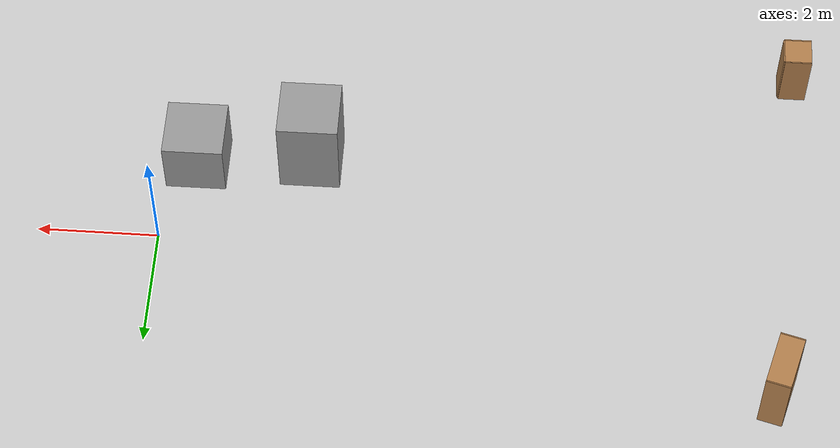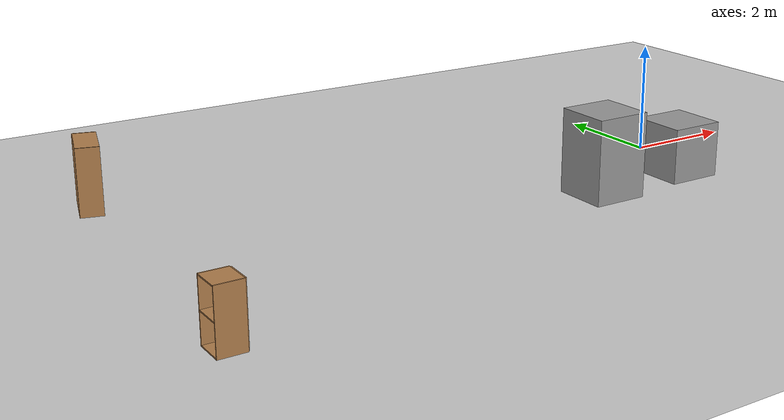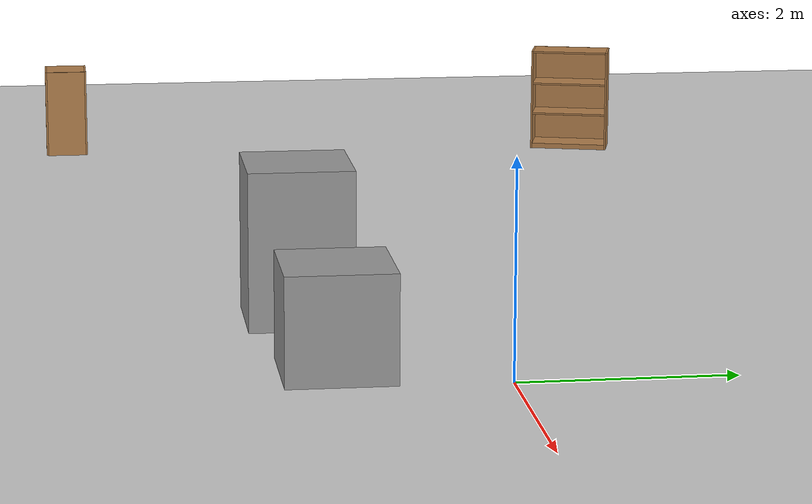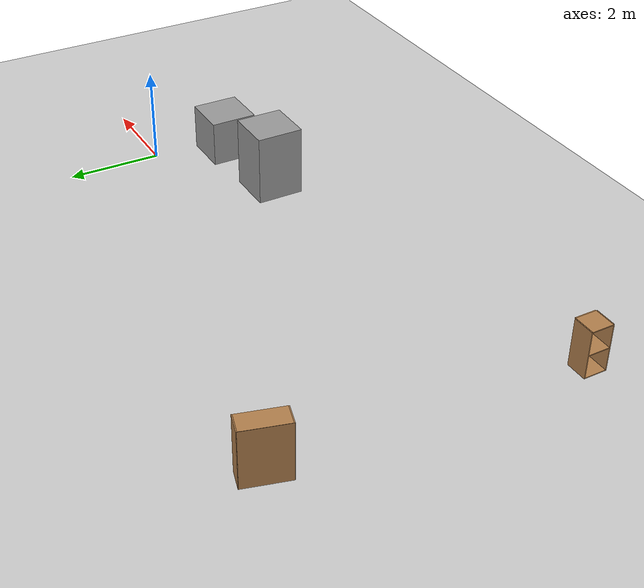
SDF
<sdf version="1.6">
 <world name="default">
  <model name="ground_plane">
   <static>1</static>
   <link name="link">
    <collision name="collision">
     <geometry><plane><normal>0 0 1</normal><size>100 100</size></plane></geometry>
     <surface>
      <contact><collide_bitmask>65535</collide_bitmask></contact>
      <friction><ode><mu>100</mu><mu2>50</mu2></ode></friction>
     </surface>
    </collision>
    <visual name="visual">
     <cast_shadows>0</cast_shadows>
     <geometry><plane><normal>0 0 1</normal><size>100 100</size></plane></geometry>
     <material>
      <script><uri>file://media/materials/scripts/gazebo.material</uri><name>Gazebo/Grey</name></script>
     </material>
    </visual>
   </link>
  </model>
  <model name="cabinet">
   <static>1</static>
   <link name="cabinet_bottom_plate">
    <inertial>
     <pose>0 0 -1 0 -0 0</pose>
     <inertia><ixx>2.05</ixx><ixy>0</ixy><ixz>0</ixz><iyy>2.05</iyy><iyz>0</iyz><izz>2.05</izz></inertia>
     <mass>25</mass>
    </inertial>
    <collision name="cabinet_bottom_plate_geom">
     <pose>0 0 0.01 0 -0 0</pose>
     <geometry><box><size>0.45 0.45 0.02</size></box></geometry>
    </collision>
    <visual name="cabinet_bottom_plate_geom_visual">
     <pose>0 0 0.01 0 -0 0</pose>
     <geometry><box><size>0.45 0.45 0.02</size></box></geometry>
     <material>
      <script><uri>file://media/materials/scripts/gazebo.material</uri><name>Gazebo/Wood</name></script>
     </material>
    </visual>
    <collision name="cabinet_bottom_plate_geom_cabinet_back_plate">
     <pose>0.235 0 0.51 0 -0 0</pose>
     <geometry><box><size>0.02 0.45 1.02</size></box></geometry>
    </collision>
    <visual name="cabinet_bottom_plate_geom_cabinet_back_plate_visual">
     <pose>0.235 0 0.51 0 -0 0</pose>
     <geometry><box><size>0.02 0.45 1.02</size></box></geometry>
     <material>
      <script><uri>file://media/materials/scripts/gazebo.material</uri><name>Gazebo/Wood</name></script>
     </material>
    </visual>
    <collision name="cabinet_bottom_plate_geom_cabinet_left_plate">
     <pose>0 0.235 0.51 0 -0 0</pose>
     <geometry><box><size>0.45 0.02 1.02</size></box></geometry>
    </collision>
    <visual name="cabinet_bottom_plate_geom_cabinet_left_plate_visual">
     <pose>0 0.235 0.51 0 -0 0</pose>
     <geometry><box><size>0.45 0.02 1.02</size></box></geometry>
     <material>
      <script><uri>file://media/materials/scripts/gazebo.material</uri><name>Gazebo/Wood</name></script>
     </material>
    </visual>
    <collision name="cabinet_bottom_plate_geom_cabinet_middle_plate">
     <pose>0 0 0.51 0 -0 0</pose>
     <geometry><box><size>0.45 0.45 0.02</size></box></geometry>
    </collision>
    <visual name="cabinet_bottom_plate_geom_cabinet_middle_plate_visual">
     <pose>0 0 0.51 0 -0 0</pose>
     <geometry><box><size>0.45 0.45 0.02</size></box></geometry>
     <material>
      <script><uri>file://media/materials/scripts/gazebo.material</uri><name>Gazebo/Wood</name></script>
     </material>
    </visual>
    <collision name="cabinet_bottom_plate_geom_cabinet_right_plate">
     <pose>0 -0.235 0.51 0 -0 0</pose>
     <geometry><box><size>0.45 0.02 1.02</size></box></geometry>
    </collision>
    <visual name="cabinet_bottom_plate_geom_cabinet_right_plate_visual">
     <pose>0 -0.235 0.51 0 -0 0</pose>
     <geometry><box><size>0.45 0.02 1.02</size></box></geometry>
     <material>
      <script><uri>file://media/materials/scripts/gazebo.material</uri><name>Gazebo/Wood</name></script>
     </material>
    </visual>
    <collision name="cabinet_bottom_plate_geom_cabinet_top_plate">
     <pose>0 0 1.01 0 -0 0</pose>
     <geometry><box><size>0.45 0.45 0.02</size></box></geometry>
    </collision>
    <visual name="cabinet_bottom_plate_geom_cabinet_top_plate_visual">
     <pose>0 0 1.01 0 -0 0</pose>
     <geometry><box><size>0.45 0.45 0.02</size></box></geometry>
     <material>
      <script><uri>file://media/materials/scripts/gazebo.material</uri><name>Gazebo/Wood</name></script>
     </material>
    </visual>
   </link>
   <pose>-10.4753 -3.71257 0 0 -0 0</pose>
  </model>
  <model name="bookshelf_0">
   <static>1</static>
   <link name="link">
    <inertial><mass>1</mass></inertial>
    <collision name="back">
     <pose>0 0.005 0.6 0 -0 0</pose>
     <geometry><box><size>0.9 0.01 1.2</size></box></geometry>
    </collision>
    <visual name="visual1">
     <pose>0 0.005 0.6 0 -0 0</pose>
     <geometry><box><size>0.9 0.01 1.2</size></box></geometry>
     <material>
      <script><uri>file://media/materials/scripts/gazebo.material</uri><name>Gazebo/Wood</name></script>
     </material>
    </visual>
    <collision name="left_side">
     <pose>0.45 -0.195 0.6 0 -0 0</pose>
     <geometry><box><size>0.02 0.4 1.2</size></box></geometry>
    </collision>
    <visual name="visual2">
     <pose>0.45 -0.195 0.6 0 -0 0</pose>
     <geometry><box><size>0.02 0.4 1.2</size></box></geometry>
     <material>
      <script><uri>file://media/materials/scripts/gazebo.material</uri><name>Gazebo/Wood</name></script>
     </material>
    </visual>
    <collision name="right_side">
     <pose>-0.45 -0.195 0.6 0 -0 0</pose>
     <geometry><box><size>0.02 0.4 1.2</size></box></geometry>
    </collision>
    <visual name="visual3">
     <pose>-0.45 -0.195 0.6 0 -0 0</pose>
     <geometry><box><size>0.02 0.4 1.2</size></box></geometry>
     <material>
      <script><uri>file://media/materials/scripts/gazebo.material</uri><name>Gazebo/Wood</name></script>
     </material>
    </visual>
    <collision name="bottom">
     <pose>0 -0.195 0.03 0 -0 0</pose>
     <geometry><box><size>0.88 0.4 0.06</size></box></geometry>
    </collision>
    <visual name="visual4">
     <pose>0 -0.195 0.03 0 -0 0</pose>
     <geometry><box><size>0.88 0.4 0.06</size></box></geometry>
     <material>
      <script><uri>file://media/materials/scripts/gazebo.material</uri><name>Gazebo/Wood</name></script>
     </material>
    </visual>
    <collision name="top">
     <pose>0 -0.195 1.19 0 -0 0</pose>
     <geometry><box><size>0.88 0.4 0.02</size></box></geometry>
    </collision>
    <visual name="visual5">
     <pose>0 -0.195 1.19 0 -0 0</pose>
     <geometry><box><size>0.88 0.4 0.02</size></box></geometry>
     <material>
      <script><uri>file://media/materials/scripts/gazebo.material</uri><name>Gazebo/Wood</name></script>
     </material>
    </visual>
    <collision name="low_shelf">
     <pose>0 -0.195 0.43 0 -0 0</pose>
     <geometry><box><size>0.88 0.4 0.02</size></box></geometry>
    </collision>
    <visual name="visual6">
     <pose>0 -0.195 0.43 0 -0 0</pose>
     <geometry><box><size>0.88 0.4 0.02</size></box></geometry>
     <material>
      <script><uri>file://media/materials/scripts/gazebo.material</uri><name>Gazebo/Wood</name></script>
     </material>
    </visual>
    <collision name="high_shelf">
     <pose>0 -0.195 0.8 0 -0 0</pose>
     <geometry><box><size>0.88 0.4 0.02</size></box></geometry>
    </collision>
    <visual name="visual7">
     <pose>0 -0.195 0.8 0 -0 0</pose>
     <geometry><box><size>0.88 0.4 0.02</size></box></geometry>
     <material>
      <script><uri>file://media/materials/scripts/gazebo.material</uri><name>Gazebo/Wood</name></script>
     </material>
    </visual>
   </link>
   <pose>-10.3 2.5 0 0 -0 1.3</pose>
  </model>
  <model name="lednice">
   <link name="link_0">
    <inertial>
     <mass>1</mass>
     <inertia>
      <ixx>0.166667</ixx>
      <ixy>0</ixy>
      <ixz>0</ixz>
      <iyy>0.166667</iyy>
      <iyz>0</iyz>
      <izz>0.166667</izz>
     </inertia>
    </inertial>
    <pose>0.94771 0.079945 0 0 -0 0</pose>
    <visual name="visual">
     <geometry><box><size>1 1 1</size></box></geometry>
     <material>
      <lighting>1</lighting>
      <script><uri>file://media/materials/scripts/gazebo.material</uri><name>Gazebo/Grey</name></script>
      <shader type="pixel"/>
     </material>
    </visual>
    <collision name="collision">
     <geometry><box><size>1 1 1</size></box></geometry>
     <surface>
      <friction>
       <ode><mu>1</mu><mu2>1</mu2><fdir1>0 0 0</fdir1><slip1>0</slip1><slip2>0</slip2></ode>
       <torsional>
        <coefficient>1</coefficient>
        <patch_radius>0</patch_radius>
        <surface_radius>0</surface_radius>
        <use_patch_radius>1</use_patch_radius>
        <ode><slip>0</slip></ode>
       </torsional>
      </friction>
      <bounce><restitution_coefficient>0</restitution_coefficient><threshold>1e+06</threshold></bounce>
      <contact>
       <collide_without_contact>0</collide_without_contact>
       <collide_without_contact_bitmask>1</collide_without_contact_bitmask>
       <collide_bitmask>1</collide_bitmask>
       <ode>
        <soft_cfm>0</soft_cfm>
        <soft_erp>0.2</soft_erp>
        <kp>1e+13</kp>
        <kd>1</kd>
        <max_vel>0.01</max_vel>
        <min_depth>0</min_depth>
       </ode>
       <bullet>
        <split_impulse>1</split_impulse>
        <split_impulse_penetration_threshold>-0.01</split_impulse_penetration_threshold>
        <soft_cfm>0</soft_cfm>
        <soft_erp>0.2</soft_erp>
        <kp>1e+13</kp>
        <kd>1</kd>
       </bullet>
      </contact>
     </surface>
    </collision>
   </link>
   <link name="link_1">
    <inertial>
     <mass>85</mass>
     <inertia><ixx>14.1667</ixx><ixy>0</ixy><ixz>0</ixz><iyy>14.1667</iyy><iyz>0</iyz><izz>14.1667</izz></inertia>
    </inertial>
    <pose>-0.947709 -0.079945 0 0 -0 0</pose>
    <visual name="visual">
     <geometry><box><size>1 1 2</size></box></geometry>
     <material>
      <lighting>1</lighting>
      <script><uri>file://media/materials/scripts/gazebo.material</uri><name>Gazebo/Grey</name></script>
      <shader type="pixel"><normal_map>__default__</normal_map></shader>
      <ambient>0.3 0.3 0.3 1</ambient>
      <diffuse>0.7 0.7 0.7 1</diffuse>
      <specular>0.01 0.01 0.01 1</specular>
      <emissive>0 0 0 1</emissive>
     </material>
    </visual>
    <collision name="collision">
     <geometry><box><size>1 1 1</size></box></geometry>
     <surface>
      <friction>
       <ode><mu>1</mu><mu2>1</mu2><fdir1>0 0 0</fdir1><slip1>0</slip1><slip2>0</slip2></ode>
       <torsional>
        <coefficient>1</coefficient>
        <patch_radius>0</patch_radius>
        <surface_radius>0</surface_radius>
        <use_patch_radius>1</use_patch_radius>
        <ode><slip>0</slip></ode>
       </torsional>
      </friction>
      <bounce><restitution_coefficient>0</restitution_coefficient><threshold>1e+06</threshold></bounce>
      <contact>
       <collide_without_contact>0</collide_without_contact>
       <collide_without_contact_bitmask>1</collide_without_contact_bitmask>
       <collide_bitmask>1</collide_bitmask>
       <ode>
        <soft_cfm>0</soft_cfm>
        <soft_erp>0.2</soft_erp>
        <kp>1e+13</kp>
        <kd>1</kd>
        <max_vel>0.01</max_vel>
        <min_depth>0</min_depth>
       </ode>
       <bullet>
        <split_impulse>1</split_impulse>
        <split_impulse_penetration_threshold>-0.01</split_impulse_penetration_threshold>
        <soft_cfm>0</soft_cfm>
        <soft_erp>0.2</soft_erp>
        <kp>1e+13</kp>
        <kd>1</kd>
       </bullet>
      </contact>
     </surface>
    </collision>
   </link>
   <static>0</static>
   <pose>-1.45447 -1.57781 0.5 0 -0 0</pose>
  </model>
 </world>
</sdf>
